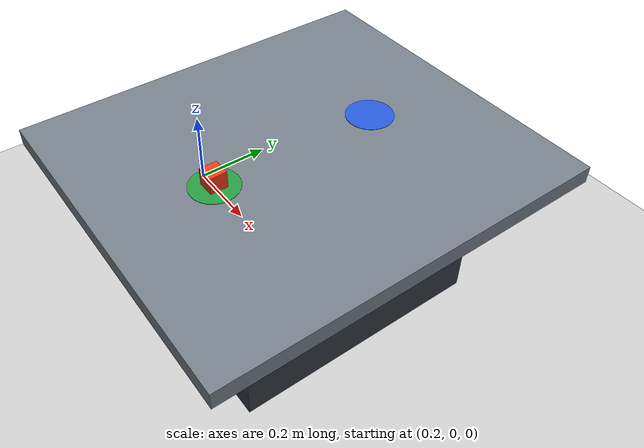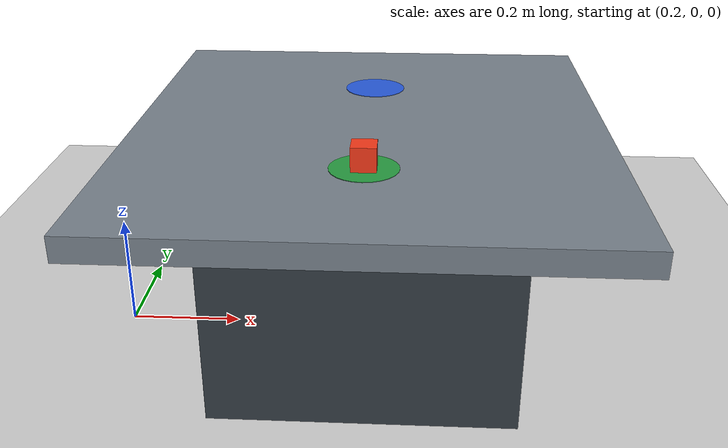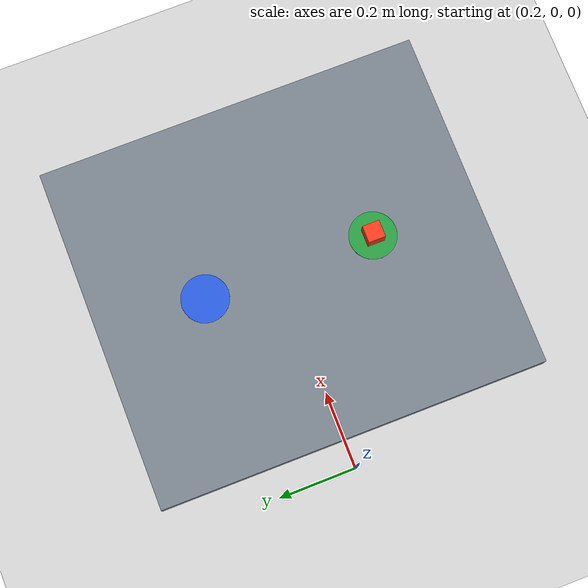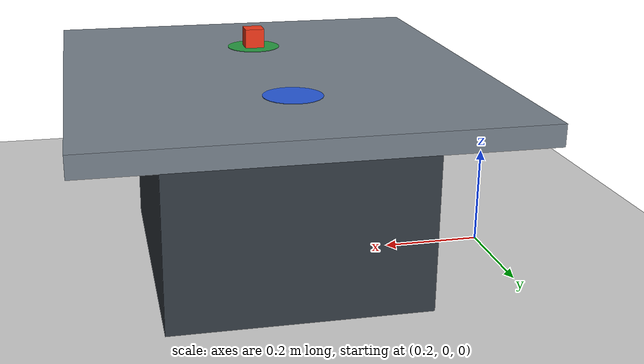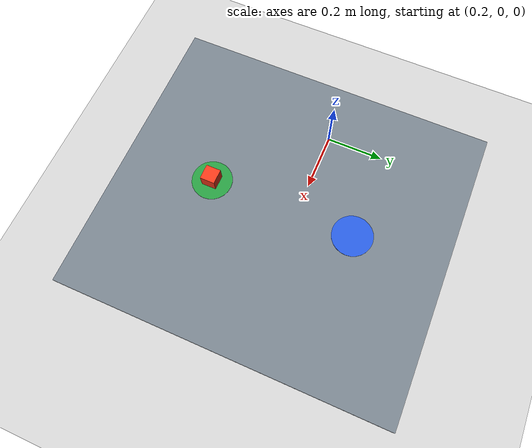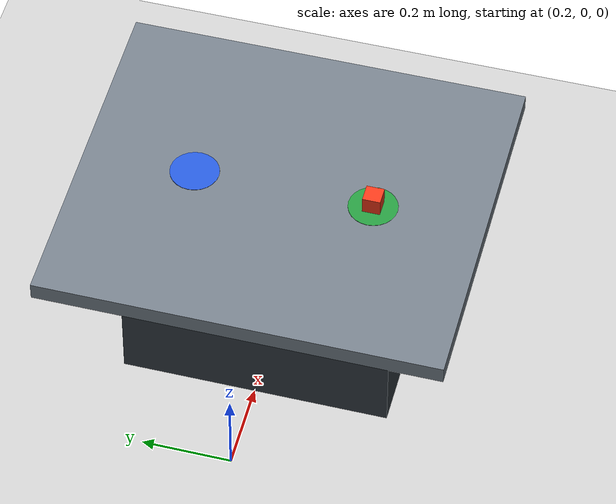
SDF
<?xml version="1.0"?>
<sdf version="1.6">
  <world name="default">
    <include><uri>model://sun</uri></include>
    <include><uri>model://ground_plane</uri></include>
    <physics name="default_physics" type="ode">
      <max_step_size>0.001</max_step_size><real_time_update_rate>1000</real_time_update_rate>
    </physics>
    <plugin name="demo_state" filename="libgazebo_ros_state.so">
      <ros><namespace>/demo</namespace></ros><update_rate>20</update_rate>
    </plugin>
    <model name="work_table">
      <static>true</static>
      <link name="table_link">
        <collision name="top_collision">
          <pose>0.65 0 0.38 0 0 0</pose>
          <geometry><box><size>0.8 0.9 0.04</size></box></geometry>
        </collision>
        <visual name="top_visual">
          <pose>0.65 0 0.38 0 0 0</pose>
          <geometry><box><size>0.8 0.9 0.04</size></box></geometry>
          <material><ambient>0.30 0.34 0.38 1</ambient><diffuse>0.46 0.50 0.54 1</diffuse></material>
        </visual>
        <visual name="support_visual">
          <pose>0.65 0 0.18 0 0 0</pose>
          <geometry><box><size>0.5 0.6 0.36</size></box></geometry>
          <material><ambient>0.12 0.14 0.16 1</ambient><diffuse>0.20 0.23 0.26 1</diffuse></material>
        </visual>
        <visual name="point_a">
          <pose>0.65 -0.20 0.4005 0 0 0</pose>
          <geometry><cylinder><radius>0.055</radius><length>0.001</length></cylinder></geometry>
          <material><ambient>0.15 0.60 0.25 1</ambient><diffuse>0.15 0.60 0.25 1</diffuse></material>
        </visual>
        <visual name="point_b">
          <pose>0.65 0.20 0.4005 0 0 0</pose>
          <geometry><cylinder><radius>0.055</radius><length>0.001</length></cylinder></geometry>
          <material><ambient>0.15 0.35 0.85 1</ambient><diffuse>0.15 0.35 0.85 1</diffuse></material>
        </visual>
      </link>
    </model>
    <model name="demo_cube">
      <pose>0.65 -0.20 0.4205 0 0 0</pose>
      <link name="cube_link">
        <inertial>
          <mass>0.05</mass>
          <inertia><ixx>0.0000133333</ixx><iyy>0.0000133333</iyy><izz>0.0000133333</izz></inertia>
        </inertial>
        <collision name="cube_collision">
          <geometry><box><size>0.04 0.04 0.04</size></box></geometry>
          <surface>
            <friction><ode><mu>1</mu><mu2>1</mu2></ode></friction>
            <contact><ode><kp>100000</kp><kd>1</kd></ode></contact>
          </surface>
        </collision>
        <visual name="cube_visual">
          <geometry><box><size>0.04 0.04 0.04</size></box></geometry>
          <material><ambient>0.85 0.15 0.07 1</ambient><diffuse>0.95 0.22 0.10 1</diffuse></material>
        </visual>
      </link>
      <plugin name="cube_grasp" filename="libcrx_cube_grasp.so">
        <ros><namespace>/demo_cube</namespace></ros>
      </plugin>
    </model>
  </world>
</sdf>
